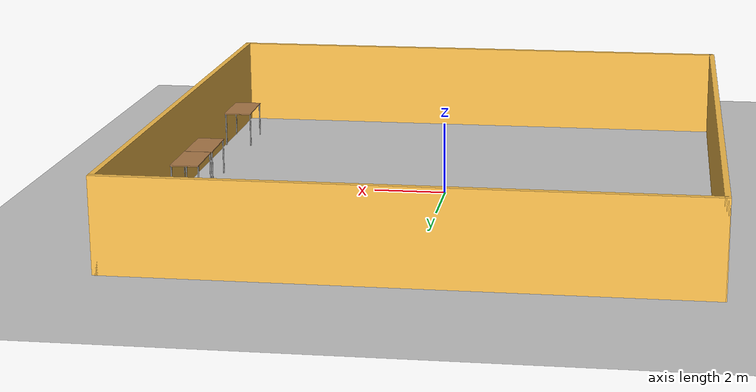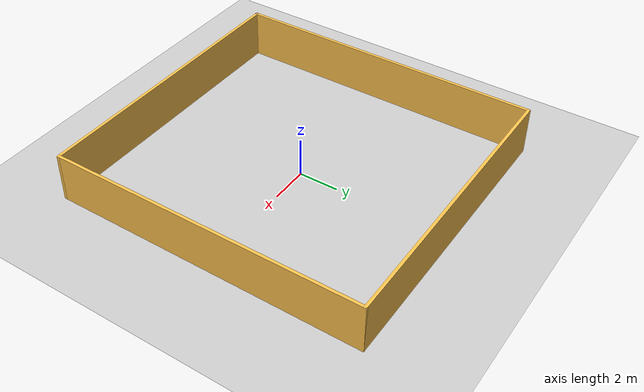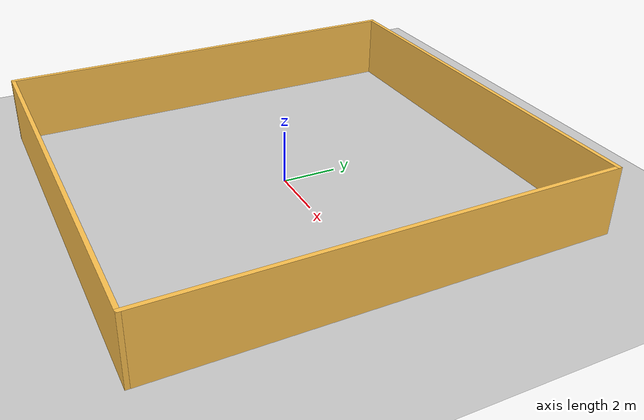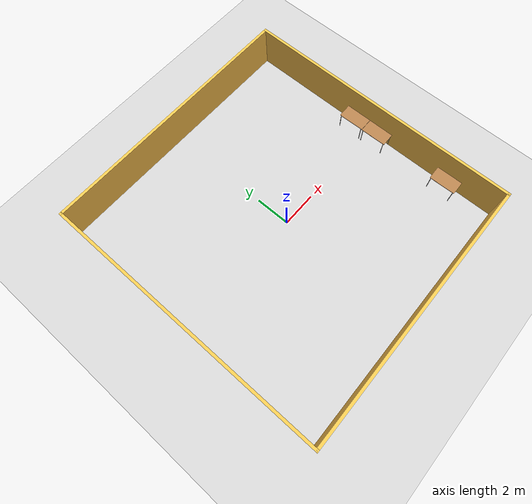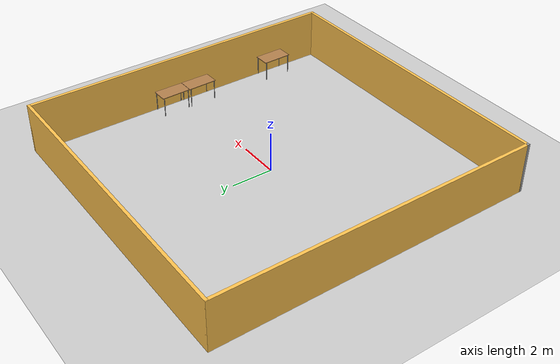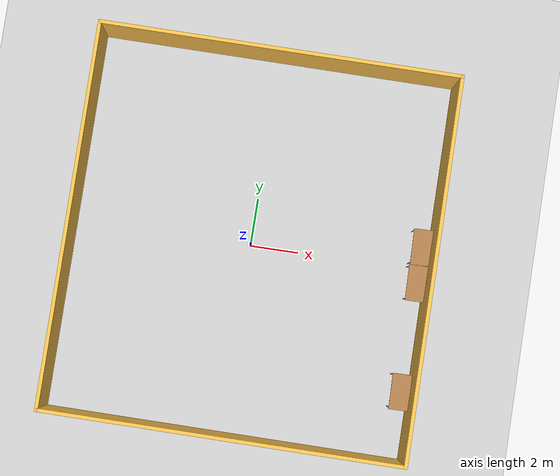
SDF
<sdf version="1.7">
 <world name="default">
  <model name="ground_plane">
   <static>1</static>
   <link name="link">
    <collision name="collision">
     <geometry><plane><normal>0 0 1</normal><size>100 100</size></plane></geometry>
     <surface>
      <contact><collide_bitmask>65535</collide_bitmask></contact>
      <friction><ode><mu>100</mu><mu2>50</mu2></ode></friction>
     </surface>
    </collision>
    <visual name="visual">
     <cast_shadows>0</cast_shadows>
     <geometry><plane><normal>0 0 1</normal><size>100 100</size></plane></geometry>
     <material>
      <script><uri>file://media/materials/scripts/gazebo.material</uri><name>Gazebo/Grey</name></script>
     </material>
    </visual>
   </link>
  </model>
  <model name="RRC">
   <link name="Wall_0">
    <collision name="Wall_0_Collision">
     <geometry><box><size>16.15 0.15 2.5</size></box></geometry>
     <pose>0 0 1.25 0 -0 0</pose>
    </collision>
    <visual name="Wall_0_Visual">
     <pose>0 0 1.25 0 -0 0</pose>
     <geometry><box><size>16.15 0.15 2.5</size></box></geometry>
     <material>
      <script><uri>file://media/materials/scripts/gazebo.material</uri><name>Gazebo/Grey</name></script>
      <ambient>1 0.764706 0.305882 1</ambient>
     </material>
     <meta><layer>0</layer></meta>
    </visual>
    <pose>-7.5 0 0 0 -0 1.5708</pose>
   </link>
   <link name="Wall_1">
    <collision name="Wall_1_Collision">
     <geometry><box><size>15.15 0.15 2.5</size></box></geometry>
     <pose>0 0 1.25 0 -0 0</pose>
    </collision>
    <visual name="Wall_1_Visual">
     <pose>0 0 1.25 0 -0 0</pose>
     <geometry><box><size>15.15 0.15 2.5</size></box></geometry>
     <material>
      <script><uri>file://media/materials/scripts/gazebo.material</uri><name>Gazebo/Grey</name></script>
      <ambient>1 0.764706 0.305882 1</ambient>
     </material>
     <meta><layer>0</layer></meta>
    </visual>
    <pose>0 8 0 0 -0 0</pose>
   </link>
   <link name="Wall_2">
    <collision name="Wall_2_Collision">
     <geometry><box><size>16.15 0.15 2.5</size></box></geometry>
     <pose>0 0 1.25 0 -0 0</pose>
    </collision>
    <visual name="Wall_2_Visual">
     <pose>0 0 1.25 0 -0 0</pose>
     <geometry><box><size>16.15 0.15 2.5</size></box></geometry>
     <material>
      <script><uri>file://media/materials/scripts/gazebo.material</uri><name>Gazebo/Grey</name></script>
      <ambient>1 0.764706 0.305882 1</ambient>
     </material>
     <meta><layer>0</layer></meta>
    </visual>
    <pose>7.5 0 0 0 -0 -1.5708</pose>
   </link>
   <link name="Wall_3">
    <collision name="Wall_3_Collision">
     <geometry><box><size>15.15 0.15 2.5</size></box></geometry>
     <pose>0 0 1.25 0 -0 0</pose>
    </collision>
    <visual name="Wall_3_Visual">
     <pose>0 0 1.25 0 -0 0</pose>
     <geometry><box><size>15.15 0.15 2.5</size></box></geometry>
     <material>
      <script><uri>file://media/materials/scripts/gazebo.material</uri><name>Gazebo/Grey</name></script>
      <ambient>1 0.764706 0.305882 1</ambient>
     </material>
     <meta><layer>0</layer></meta>
    </visual>
    <pose>0 -8 0 0 -0 3.14159</pose>
   </link>
   <link name="Wall_4">
    <collision name="Wall_4_Collision">
     <geometry><box><size>0.15 0.15 2.5</size></box></geometry>
     <pose>0 0 1.25 0 -0 0</pose>
    </collision>
    <visual name="Wall_4_Visual">
     <pose>0 0 1.25 0 -0 0</pose>
     <geometry><box><size>0.15 0.15 2.5</size></box></geometry>
     <material>
      <script><uri>file://media/materials/scripts/gazebo.material</uri><name>Gazebo/Grey</name></script>
      <ambient>1 1 1 1</ambient>
     </material>
     <meta><layer>0</layer></meta>
    </visual>
    <pose>-7.5 -8 0 0 -0 0</pose>
   </link>
   <static>1</static>
  </model>
  <model name="table_clone_0_clone_5">
   <static>1</static>
   <link name="link">
    <collision name="surface">
     <pose>0 0 1 0 -0 0</pose>
     <geometry><box><size>1.5 0.8 0.03</size></box></geometry>
     <surface><friction><ode><mu>0.6</mu><mu2>0.6</mu2></ode></friction></surface>
    </collision>
    <visual name="visual1">
     <pose>0 0 1 0 -0 0</pose>
     <geometry><box><size>1.5 0.8 0.03</size></box></geometry>
     <material>
      <script><uri>file://media/materials/scripts/gazebo.material</uri><name>Gazebo/Wood</name></script>
     </material>
    </visual>
    <collision name="front_left_leg">
     <pose>0.68 0.38 0.5 0 -0 0</pose>
     <geometry><cylinder><radius>0.02</radius><length>1</length></cylinder></geometry>
    </collision>
    <visual name="front_left_leg">
     <pose>0.68 0.38 0.5 0 -0 0</pose>
     <geometry><cylinder><radius>0.02</radius><length>1</length></cylinder></geometry>
     <material>
      <script><uri>file://media/materials/scripts/gazebo.material</uri><name>Gazebo/Grey</name></script>
     </material>
    </visual>
    <collision name="front_right_leg">
     <pose>0.68 -0.38 0.5 0 -0 0</pose>
     <geometry><cylinder><radius>0.02</radius><length>1</length></cylinder></geometry>
    </collision>
    <visual name="front_right_leg">
     <pose>0.68 -0.38 0.5 0 -0 0</pose>
     <geometry><cylinder><radius>0.02</radius><length>1</length></cylinder></geometry>
     <material>
      <script><uri>file://media/materials/scripts/gazebo.material</uri><name>Gazebo/Grey</name></script>
     </material>
    </visual>
    <collision name="back_right_leg">
     <pose>-0.68 -0.38 0.5 0 -0 0</pose>
     <geometry><cylinder><radius>0.02</radius><length>1</length></cylinder></geometry>
    </collision>
    <visual name="back_right_leg">
     <pose>-0.68 -0.38 0.5 0 -0 0</pose>
     <geometry><cylinder><radius>0.02</radius><length>1</length></cylinder></geometry>
     <material>
      <script><uri>file://media/materials/scripts/gazebo.material</uri><name>Gazebo/Grey</name></script>
     </material>
    </visual>
    <collision name="back_left_leg">
     <pose>-0.68 0.38 0.5 0 -0 0</pose>
     <geometry><cylinder><radius>0.02</radius><length>1</length></cylinder></geometry>
    </collision>
    <visual name="back_left_leg">
     <pose>-0.68 0.38 0.5 0 -0 0</pose>
     <geometry><cylinder><radius>0.02</radius><length>1</length></cylinder></geometry>
     <material>
      <script><uri>file://media/materials/scripts/gazebo.material</uri><name>Gazebo/Grey</name></script>
     </material>
    </visual>
   </link>
   <pose>7.03829 0.952201 0 0 -0 1.58908</pose>
  </model>
  <model name="table_clone_0_clone_6">
   <static>1</static>
   <link name="link">
    <collision name="surface">
     <pose>0 0 1 0 -0 0</pose>
     <geometry><box><size>1.5 0.8 0.03</size></box></geometry>
     <surface><friction><ode><mu>0.6</mu><mu2>0.6</mu2></ode></friction></surface>
    </collision>
    <visual name="visual1">
     <pose>0 0 1 0 -0 0</pose>
     <geometry><box><size>1.5 0.8 0.03</size></box></geometry>
     <material>
      <script><uri>file://media/materials/scripts/gazebo.material</uri><name>Gazebo/Wood</name></script>
     </material>
    </visual>
    <collision name="front_left_leg">
     <pose>0.68 0.38 0.5 0 -0 0</pose>
     <geometry><cylinder><radius>0.02</radius><length>1</length></cylinder></geometry>
    </collision>
    <visual name="front_left_leg">
     <pose>0.68 0.38 0.5 0 -0 0</pose>
     <geometry><cylinder><radius>0.02</radius><length>1</length></cylinder></geometry>
     <material>
      <script><uri>file://media/materials/scripts/gazebo.material</uri><name>Gazebo/Grey</name></script>
     </material>
    </visual>
    <collision name="front_right_leg">
     <pose>0.68 -0.38 0.5 0 -0 0</pose>
     <geometry><cylinder><radius>0.02</radius><length>1</length></cylinder></geometry>
    </collision>
    <visual name="front_right_leg">
     <pose>0.68 -0.38 0.5 0 -0 0</pose>
     <geometry><cylinder><radius>0.02</radius><length>1</length></cylinder></geometry>
     <material>
      <script><uri>file://media/materials/scripts/gazebo.material</uri><name>Gazebo/Grey</name></script>
     </material>
    </visual>
    <collision name="back_right_leg">
     <pose>-0.68 -0.38 0.5 0 -0 0</pose>
     <geometry><cylinder><radius>0.02</radius><length>1</length></cylinder></geometry>
    </collision>
    <visual name="back_right_leg">
     <pose>-0.68 -0.38 0.5 0 -0 0</pose>
     <geometry><cylinder><radius>0.02</radius><length>1</length></cylinder></geometry>
     <material>
      <script><uri>file://media/materials/scripts/gazebo.material</uri><name>Gazebo/Grey</name></script>
     </material>
    </visual>
    <collision name="back_left_leg">
     <pose>-0.68 0.38 0.5 0 -0 0</pose>
     <geometry><cylinder><radius>0.02</radius><length>1</length></cylinder></geometry>
    </collision>
    <visual name="back_left_leg">
     <pose>-0.68 0.38 0.5 0 -0 0</pose>
     <geometry><cylinder><radius>0.02</radius><length>1</length></cylinder></geometry>
     <material>
      <script><uri>file://media/materials/scripts/gazebo.material</uri><name>Gazebo/Grey</name></script>
     </material>
    </visual>
   </link>
   <pose>7.04645 -0.560802 0 0 -0 1.58908</pose>
  </model>
  <model name="table_clone_0_clone_9">
   <static>1</static>
   <link name="link">
    <collision name="surface">
     <pose>0 0 1 0 -0 0</pose>
     <geometry><box><size>1.5 0.8 0.03</size></box></geometry>
     <surface><friction><ode><mu>0.6</mu><mu2>0.6</mu2></ode></friction></surface>
    </collision>
    <visual name="visual1">
     <pose>0 0 1 0 -0 0</pose>
     <geometry><box><size>1.5 0.8 0.03</size></box></geometry>
     <material>
      <script><uri>file://media/materials/scripts/gazebo.material</uri><name>Gazebo/Wood</name></script>
     </material>
    </visual>
    <collision name="front_left_leg">
     <pose>0.68 0.38 0.5 0 -0 0</pose>
     <geometry><cylinder><radius>0.02</radius><length>1</length></cylinder></geometry>
    </collision>
    <visual name="front_left_leg">
     <pose>0.68 0.38 0.5 0 -0 0</pose>
     <geometry><cylinder><radius>0.02</radius><length>1</length></cylinder></geometry>
     <material>
      <script><uri>file://media/materials/scripts/gazebo.material</uri><name>Gazebo/Grey</name></script>
     </material>
    </visual>
    <collision name="front_right_leg">
     <pose>0.68 -0.38 0.5 0 -0 0</pose>
     <geometry><cylinder><radius>0.02</radius><length>1</length></cylinder></geometry>
    </collision>
    <visual name="front_right_leg">
     <pose>0.68 -0.38 0.5 0 -0 0</pose>
     <geometry><cylinder><radius>0.02</radius><length>1</length></cylinder></geometry>
     <material>
      <script><uri>file://media/materials/scripts/gazebo.material</uri><name>Gazebo/Grey</name></script>
     </material>
    </visual>
    <collision name="back_right_leg">
     <pose>-0.68 -0.38 0.5 0 -0 0</pose>
     <geometry><cylinder><radius>0.02</radius><length>1</length></cylinder></geometry>
    </collision>
    <visual name="back_right_leg">
     <pose>-0.68 -0.38 0.5 0 -0 0</pose>
     <geometry><cylinder><radius>0.02</radius><length>1</length></cylinder></geometry>
     <material>
      <script><uri>file://media/materials/scripts/gazebo.material</uri><name>Gazebo/Grey</name></script>
     </material>
    </visual>
    <collision name="back_left_leg">
     <pose>-0.68 0.38 0.5 0 -0 0</pose>
     <geometry><cylinder><radius>0.02</radius><length>1</length></cylinder></geometry>
    </collision>
    <visual name="back_left_leg">
     <pose>-0.68 0.38 0.5 0 -0 0</pose>
     <geometry><cylinder><radius>0.02</radius><length>1</length></cylinder></geometry>
     <material>
      <script><uri>file://media/materials/scripts/gazebo.material</uri><name>Gazebo/Grey</name></script>
     </material>
    </visual>
   </link>
   <pose>7.02703 -5.11024 0 0 -0 1.58908</pose>
  </model>
  <model name="Construction Cone_clone">
   <pose>5.7992 -4.49507 -1e-05 -1e-06 0 0</pose>
   <scale>1 1 1</scale>
   <link name="link">
    <pose>5.7992 -4.49507 -1e-05 -1e-06 0 0</pose>
    <velocity>0 0 0 0 -0 0</velocity>
    <acceleration>0 0 -9.8 0 -0 0</acceleration>
    <wrench>0 0 -9.8 0 -0 0</wrench>
   </link>
  </model>
  <model name="Construction Cone_clone_1">
   <pose>1.23861 -4.36281 -1e-05 0 -0 0</pose>
   <scale>1 1 1</scale>
   <link name="link">
    <pose>1.23861 -4.36281 -1e-05 0 -0 0</pose>
    <velocity>0 0 0 0 -0 0</velocity>
    <acceleration>0 0 -9.8 0 -0 0</acceleration>
    <wrench>0 0 -9.8 0 -0 0</wrench>
   </link>
  </model>
  <model name="MetalCabinet_clone_0">
   <pose>2.55708 -7.40689 0 0 -0 1.57149</pose>
   <scale>1 1 1</scale>
   <link name="body">
    <pose>2.55708 -7.40689 0 0 -0 1.57149</pose>
    <velocity>0 0 0 0 -0 0</velocity>
    <acceleration>0 0 0 0 -0 0</acceleration>
    <wrench>0 0 0 0 -0 0</wrench>
   </link>
  </model>
  <model name="MetalCabinet_clone_1">
   <pose>2.55269 -6.6114 0 0 -0 1.57149</pose>
   <scale>1 1 1</scale>
   <link name="body">
    <pose>2.55269 -6.6114 0 0 -0 1.57149</pose>
    <velocity>0 0 0 0 -0 0</velocity>
    <acceleration>0 0 0 0 -0 0</acceleration>
    <wrench>0 0 0 0 -0 0</wrench>
   </link>
  </model>
  <model name="MetalCabinet_clone_2">
   <pose>2.56191 -5.80129 0 0 -0 1.57149</pose>
   <scale>1 1 1</scale>
   <link name="body">
    <pose>2.56191 -5.80129 0 0 -0 1.57149</pose>
    <velocity>0 0 0 0 -0 0</velocity>
    <acceleration>0 0 0 0 -0 0</acceleration>
    <wrench>0 0 0 0 -0 0</wrench>
   </link>
  </model>
  <model name="MetalCabinet_clone_3">
   <pose>2.52904 -4.93026 0 0 -0 1.57149</pose>
   <scale>1 1 1</scale>
   <link name="body">
    <pose>2.52904 -4.93026 0 0 -0 1.57149</pose>
    <velocity>0 0 0 0 -0 0</velocity>
    <acceleration>0 0 0 0 -0 0</acceleration>
    <wrench>0 0 0 0 -0 0</wrench>
   </link>
  </model>
  <model name="MetalCabinet_clone_clone">
   <pose>-7.01967 -4.30325 0 0 0 -1.55346</pose>
   <scale>1 1 1</scale>
   <link name="body">
    <pose>-7.01967 -4.30325 0 0 0 -1.55346</pose>
    <velocity>0 0 0 0 -0 0</velocity>
    <acceleration>0 0 0 0 -0 0</acceleration>
    <wrench>0 0 0 0 -0 0</wrench>
   </link>
  </model>
  <model name="MetalCabinet_clone_clone_0">
   <pose>-7.11034 -7.35093 0 0 0 -1.55346</pose>
   <scale>1 1 1</scale>
   <link name="body">
    <pose>-7.11034 -7.35093 0 0 0 -1.55346</pose>
    <velocity>0 0 0 0 -0 0</velocity>
    <acceleration>0 0 0 0 -0 0</acceleration>
    <wrench>0 0 0 0 -0 0</wrench>
   </link>
  </model>
  <model name="MetalCabinet_clone_clone_1">
   <pose>-7.05939 -6.41552 0 0 0 -1.55346</pose>
   <scale>1 1 1</scale>
   <link name="body">
    <pose>-7.05939 -6.41552 0 0 0 -1.55346</pose>
    <velocity>0 0 0 0 -0 0</velocity>
    <acceleration>0 0 0 0 -0 0</acceleration>
    <wrench>0 0 0 0 -0 0</wrench>
   </link>
  </model>
  <model name="MetalCabinet_clone_clone_10">
   <pose>2.06666 -7.39083 0 0 0 -1.55346</pose>
   <scale>1 1 1</scale>
   <link name="body">
    <pose>2.06666 -7.39083 0 0 0 -1.55346</pose>
    <velocity>0 0 0 0 -0 0</velocity>
    <acceleration>0 0 0 0 -0 0</acceleration>
    <wrench>0 0 0 0 -0 0</wrench>
   </link>
  </model>
  <model name="MetalCabinet_clone_clone_2">
   <pose>-7.00181 -5.3595 0 0 0 -1.55346</pose>
   <scale>1 1 1</scale>
   <link name="body">
    <pose>-7.00181 -5.3595 0 0 0 -1.55346</pose>
    <velocity>0 0 0 0 -0 0</velocity>
    <acceleration>0 0 0 0 -0 0</acceleration>
    <wrench>0 0 0 0 -0 0</wrench>
   </link>
  </model>
  <model name="MetalCabinet_clone_clone_6">
   <pose>-6.34319 -6.63218 0 0 0 -1.55346</pose>
   <scale>1 1 1</scale>
   <link name="body">
    <pose>-6.34319 -6.63218 0 0 0 -1.55346</pose>
    <velocity>0 0 0 0 -0 0</velocity>
    <acceleration>0 0 0 0 -0 0</acceleration>
    <wrench>0 0 0 0 -0 0</wrench>
   </link>
  </model>
  <model name="MetalCabinet_clone_clone_7">
   <pose>2.0733 -4.92417 0 0 0 -1.55346</pose>
   <scale>1 1 1</scale>
   <link name="body">
    <pose>2.0733 -4.92417 0 0 0 -1.55346</pose>
    <velocity>0 0 0 0 -0 0</velocity>
    <acceleration>0 0 0 0 -0 0</acceleration>
    <wrench>0 0 0 0 -0 0</wrench>
   </link>
  </model>
  <model name="MetalCabinet_clone_clone_8">
   <pose>2.083 -5.7488 0 0 0 -1.55346</pose>
   <scale>1 1 1</scale>
   <link name="body">
    <pose>2.083 -5.7488 0 0 0 -1.55346</pose>
    <velocity>0 0 0 0 -0 0</velocity>
    <acceleration>0 0 0 0 -0 0</acceleration>
    <wrench>0 0 0 0 -0 0</wrench>
   </link>
  </model>
  <model name="MetalCabinet_clone_clone_9">
   <pose>2.09349 -6.58171 0 0 0 -1.55346</pose>
   <scale>1 1 1</scale>
   <link name="body">
    <pose>2.09349 -6.58171 0 0 0 -1.55346</pose>
    <velocity>0 0 0 0 -0 0</velocity>
    <acceleration>0 0 0 0 -0 0</acceleration>
    <wrench>0 0 0 0 -0 0</wrench>
   </link>
  </model>
  <model name="OfficeChairBlack_clone">
   <pose>-1.49275 -4.55886 0 0 -0 0</pose>
   <scale>1 1 1</scale>
   <link name="body">
    <pose>-1.49275 -4.55886 0 0 -0 0</pose>
    <velocity>0 0 0 0 -0 0</velocity>
    <acceleration>0 0 0 0 -0 0</acceleration>
    <wrench>0 0 0 0 -0 0</wrench>
   </link>
  </model>
  <model name="OfficeChairBlack_clone_0">
   <pose>-1.49017 -6.02346 0 0 -0 0</pose>
   <scale>1 1 1</scale>
   <link name="body">
    <pose>-1.49017 -6.02346 0 0 -0 0</pose>
    <velocity>0 0 0 0 -0 0</velocity>
    <acceleration>0 0 0 0 -0 0</acceleration>
    <wrench>0 0 0 0 -0 0</wrench>
   </link>
  </model>
  <model name="OfficeChairBlue_clone_0">
   <pose>-4.15467 -4.70728 0 0 -0 0</pose>
   <scale>1 1 1</scale>
   <link name="body">
    <pose>-4.15467 -4.70728 0 0 -0 0</pose>
    <velocity>0 0 0 0 -0 0</velocity>
    <acceleration>0 0 0 0 -0 0</acceleration>
    <wrench>0 0 0 0 -0 0</wrench>
   </link>
  </model>
  <model name="OfficeChairBlue_clone_1">
   <pose>-3.92885 -6.34664 0 0 -0 0</pose>
   <scale>1 1 1</scale>
   <link name="body">
    <pose>-3.92885 -6.34664 0 0 -0 0</pose>
    <velocity>0 0 0 0 -0 0</velocity>
    <acceleration>0 0 0 0 -0 0</acceleration>
    <wrench>0 0 0 0 -0 0</wrench>
   </link>
  </model>
  <model name="OfficeChairGrey_clone_0_clone_0">
   <pose>-1.2616 1.20346 0 0 -0 0</pose>
   <scale>1 1 1</scale>
   <link name="body">
    <pose>-1.2616 1.20346 0 0 -0 0</pose>
    <velocity>0 0 0 0 -0 0</velocity>
    <acceleration>0 0 0 0 -0 0</acceleration>
    <wrench>0 0 0 0 -0 0</wrench>
   </link>
  </model>
  <model name="OfficeChairGrey_clone_0_clone_0_clone">
   <pose>-0.058065 -0.670497 0 0 -0 3.1354</pose>
   <scale>1 1 1</scale>
   <link name="body">
    <pose>-0.058065 -0.670497 0 0 -0 3.1354</pose>
    <velocity>0 0 0 0 -0 0</velocity>
    <acceleration>0 0 0 0 -0 0</acceleration>
    <wrench>0 0 0 0 -0 0</wrench>
   </link>
  </model>
  <model name="OfficeChairGrey_clone_0_clone_1">
   <pose>6.26333 1.38353 0 0 -0 0</pose>
   <scale>1 1 1</scale>
   <link name="body">
    <pose>6.26333 1.38353 0 0 -0 0</pose>
    <velocity>0 0 0 0 -0 0</velocity>
    <acceleration>0 0 0 0 -0 0</acceleration>
    <wrench>0 0 0 0 -0 0</wrench>
   </link>
  </model>
  <model name="OfficeChairGrey_clone_clone_0">
   <pose>6.14076 0.445875 0 0 -0 0</pose>
   <scale>1 1 1</scale>
   <link name="body">
    <pose>6.14076 0.445875 0 0 -0 0</pose>
    <velocity>0 0 0 0 -0 0</velocity>
    <acceleration>0 0 0 0 -0 0</acceleration>
    <wrench>0 0 0 0 -0 0</wrench>
   </link>
  </model>
  <model name="OfficeChairGrey_clone_clone_0_clone">
   <pose>2.405 0.950697 0 0 0 -1.57391</pose>
   <scale>1 1 1</scale>
   <link name="body">
    <pose>2.405 0.950697 0 0 0 -1.57391</pose>
    <velocity>0 0 0 0 -0 0</velocity>
    <acceleration>0 0 0 0 -0 0</acceleration>
    <wrench>0 0 0 0 -0 0</wrench>
   </link>
  </model>
  <model name="OfficeChairGrey_clone_clone_0_clone_0">
   <pose>2.43591 -0.548521 0 0 0 -1.56247</pose>
   <scale>1 1 1</scale>
   <link name="body">
    <pose>2.43591 -0.548521 0 0 0 -1.56247</pose>
    <velocity>0 0 0 0 -0 0</velocity>
    <acceleration>0 0 0 0 -0 0</acceleration>
    <wrench>0 0 0 0 -0 0</wrench>
   </link>
  </model>
  <model name="WhiteCabinet_clone_0_clone_4">
   <pose>-4.22011 0.788936 0 0 -0 1.55539</pose>
   <scale>1 1 1</scale>
   <link name="body">
    <pose>-4.22011 0.788936 0 0 -0 1.55539</pose>
    <velocity>0 0 0 0 -0 0</velocity>
    <acceleration>0 0 0 0 -0 0</acceleration>
    <wrench>0 0 0 0 -0 0</wrench>
   </link>
  </model>
  <model name="WhiteCabinet_clone_0_clone_6">
   <pose>-2.8567 1.46182 0 0 -0 1.55539</pose>
   <scale>1 1 1</scale>
   <link name="body">
    <pose>-2.8567 1.46182 0 0 -0 1.55539</pose>
    <velocity>0 0 0 0 -0 0</velocity>
    <acceleration>0 0 0 0 -0 0</acceleration>
    <wrench>0 0 0 0 -0 0</wrench>
   </link>
  </model>
  <model name="WhiteCabinet_clone_0_clone_6_clone">
   <pose>-2.82657 0.541053 0 0 0 -1.52616</pose>
   <scale>1 1 1</scale>
   <link name="body">
    <pose>-2.82657 0.541053 0 0 0 -1.52616</pose>
    <velocity>0 0 0 0 -0 0</velocity>
    <acceleration>0 0 0 0 -0 0</acceleration>
    <wrench>0 0 0 0 -0 0</wrench>
   </link>
  </model>
  <model name="WhiteCabinet_clone_0_clone_6_clone_0_clone_clone_1_clone">
   <pose>-4.85951 -0.016652 0 0 0 -1.55703</pose>
   <scale>1 1 1</scale>
   <link name="body">
    <pose>-4.85951 -0.016652 0 0 0 -1.55703</pose>
    <velocity>0 0 0 0 -0 0</velocity>
    <acceleration>0 0 0 0 -0 0</acceleration>
    <wrench>0 0 0 0 -0 0</wrench>
   </link>
  </model>
  <model name="WhiteCabinet_clone_0_clone_6_clone_0_clone_clone_1_clone_0">
   <pose>-4.86407 0.924354 0 0 0 -1.55703</pose>
   <scale>1 1 1</scale>
   <link name="body">
    <pose>-4.86407 0.924354 0 0 0 -1.55703</pose>
    <velocity>0 0 0 0 -0 0</velocity>
    <acceleration>0 0 0 0 -0 0</acceleration>
    <wrench>0 0 0 0 -0 0</wrench>
   </link>
  </model>
  <model name="WhiteCabinet_clone_0_clone_6_clone_0_clone_clone_1_clone_2">
   <pose>-2.82239 -0.446166 0 0 0 -1.55703</pose>
   <scale>1 1 1</scale>
   <link name="body">
    <pose>-2.82239 -0.446166 0 0 0 -1.55703</pose>
    <velocity>0 0 0 0 -0 0</velocity>
    <acceleration>0 0 0 0 -0 0</acceleration>
    <wrench>0 0 0 0 -0 0</wrench>
   </link>
  </model>
  <model name="WhiteCabinet_clone_0_clone_6_clone_0_clone_clone_1_clone_2_clone">
   <pose>-4.83368 -0.983611 0 0 0 -1.55703</pose>
   <scale>1 1 1</scale>
   <link name="body">
    <pose>-4.83368 -0.983611 0 0 0 -1.55703</pose>
    <velocity>0 0 0 0 -0 0</velocity>
    <acceleration>0 0 0 0 -0 0</acceleration>
    <wrench>0 0 0 0 -0 0</wrench>
   </link>
  </model>
  <model name="WhiteCabinet_clone_0_clone_6_clone_0_clone_clone_1_clone_2_clone_0">
   <pose>-4.20443 -0.125615 0 0 0 -1.55703</pose>
   <scale>1 1 1</scale>
   <link name="body">
    <pose>-4.20443 -0.125615 0 0 0 -1.55703</pose>
    <velocity>0 0 0 0 -0 0</velocity>
    <acceleration>0 0 0 0 -0 0</acceleration>
    <wrench>0 0 0 0 -0 0</wrench>
   </link>
  </model>
  <model name="WhiteCabinet_clone_0_clone_6_clone_0_clone_clone_1_clone_2_clone_1">
   <pose>-4.19078 -1.03023 0 0 0 -1.55703</pose>
   <scale>1 1 1</scale>
   <link name="body">
    <pose>-4.19078 -1.03023 0 0 0 -1.55703</pose>
    <velocity>0 0 0 0 -0 0</velocity>
    <acceleration>0 0 0 0 -0 0</acceleration>
    <wrench>0 0 0 0 -0 0</wrench>
   </link>
  </model>
  <model name="cardboard_box_0">
   <pose>3.96847 0.977565 -1.0418e+07 0 -0 0</pose>
   <scale>1 1 1</scale>
   <link name="link">
    <pose>7.93694 1.95513 -1.0418e+07 0 -0 0</pose>
    <velocity>0 0 -14289.6 0 -0 0</velocity>
    <acceleration>0 0 -9.8 0 -0 0</acceleration>
    <wrench>0 0 -9.8 0 -0 0</wrench>
   </link>
  </model>
  <model name="cardboard_box_1">
   <pose>0.006438 -3.96264 -1.0418e+07 0 -0 0</pose>
   <scale>1 1 1</scale>
   <link name="link">
    <pose>0.012876 -7.92528 -1.0418e+07 0 -0 0</pose>
    <velocity>0 0 -14289.6 0 -0 0</velocity>
    <acceleration>0 0 -9.8 0 -0 0</acceleration>
    <wrench>0 0 -9.8 0 -0 0</wrench>
   </link>
  </model>
  <model name="person_standing_clone_0_clone">
   <pose>6.12731 -0.461294 -1e-06 -1e-06 1e-06 1.64021</pose>
   <scale>1 1 1</scale>
   <link name="link">
    <pose>6.12731 -0.461294 -1e-06 -1e-06 1e-06 1.64021</pose>
    <velocity>0 0 0 0 -0 0</velocity>
    <acceleration>-1.25678 1.54637 -1.41033 -1.56221 -1.37587 -0.045292</acceleration>
    <wrench>-100.542 123.709 -112.826 0 -0 0</wrench>
   </link>
  </model>
  <model name="table_clone_0_clone_clone_1">
   <pose>-5.62606 -6.7098 0 0 -0 1.58908</pose>
   <scale>1 1 1</scale>
   <link name="link">
    <pose>-5.62606 -6.7098 0 0 -0 1.58908</pose>
    <velocity>0 0 0 0 -0 0</velocity>
    <acceleration>0 0 0 0 -0 0</acceleration>
    <wrench>0 0 0 0 -0 0</wrench>
   </link>
  </model>
  <model name="table_clone_0_clone_clone_2">
   <pose>-5.68516 -5.20679 0 0 -0 1.58908</pose>
   <scale>1 1 1</scale>
   <link name="link">
    <pose>-5.68516 -5.20679 0 0 -0 1.58908</pose>
    <velocity>0 0 0 0 -0 0</velocity>
    <acceleration>0 0 0 0 -0 0</acceleration>
    <wrench>0 0 0 0 -0 0</wrench>
   </link>
  </model>
  <model name="table_clone_0_clone_clone_2_clone">
   <pose>-4.83975 -4.71811 0 0 -0 1.58908</pose>
   <scale>1 1 1</scale>
   <link name="link">
    <pose>-4.83975 -4.71811 0 0 -0 1.58908</pose>
    <velocity>0 0 0 0 -0 0</velocity>
    <acceleration>0 0 0 0 -0 0</acceleration>
    <wrench>0 0 0 0 -0 0</wrench>
   </link>
  </model>
  <model name="table_clone_0_clone_clone_2_clone_0">
   <pose>-4.79726 -6.46943 0 0 -0 1.58908</pose>
   <scale>1 1 1</scale>
   <link name="link">
    <pose>-4.79726 -6.46943 0 0 -0 1.58908</pose>
    <velocity>0 0 0 0 -0 0</velocity>
    <acceleration>0 0 0 0 -0 0</acceleration>
    <wrench>0 0 0 0 -0 0</wrench>
   </link>
  </model>
  <model name="table_clone_1">
   <pose>4.42862 -4.64955 0 0 -0 0</pose>
   <scale>1 1 1</scale>
   <link name="link">
    <pose>4.42862 -4.64955 0 0 -0 0</pose>
    <velocity>0 0 0 0 -0 0</velocity>
    <acceleration>0 0 0 0 -0 0</acceleration>
    <wrench>0 0 0 0 -0 0</wrench>
   </link>
  </model>
  <model name="table_clone_2_clone_clone_clone">
   <pose>0.664986 0.980658 0 0 0 -1.55798</pose>
   <scale>1 1 1</scale>
   <link name="link">
    <pose>0.664986 0.980658 0 0 0 -1.55798</pose>
    <velocity>0 0 0 0 -0 0</velocity>
    <acceleration>0 0 0 0 -0 0</acceleration>
    <wrench>0 0 0 0 -0 0</wrench>
   </link>
  </model>
  <model name="table_clone_2_clone_clone_clone_0">
   <pose>0.684996 -0.53817 0 0 0 -1.55798</pose>
   <scale>1 1 1</scale>
   <link name="link">
    <pose>0.684996 -0.53817 0 0 0 -1.55798</pose>
    <velocity>0 0 0 0 -0 0</velocity>
    <acceleration>0 0 0 0 -0 0</acceleration>
    <wrench>0 0 0 0 -0 0</wrench>
   </link>
  </model>
  <model name="table_clone_2_clone_clone_clone_clone">
   <pose>1.53882 1.03634 0 0 0 -1.55798</pose>
   <scale>1 1 1</scale>
   <link name="link">
    <pose>1.53882 1.03634 0 0 0 -1.55798</pose>
    <velocity>0 0 0 0 -0 0</velocity>
    <acceleration>0 0 0 0 -0 0</acceleration>
    <wrench>0 0 0 0 -0 0</wrench>
   </link>
  </model>
  <model name="table_clone_2_clone_clone_clone_clone_clone">
   <pose>1.544 -0.499855 0 0 0 -1.55798</pose>
   <scale>1 1 1</scale>
   <link name="link">
    <pose>1.544 -0.499855 0 0 0 -1.55798</pose>
    <velocity>0 0 0 0 -0 0</velocity>
    <acceleration>0 0 0 0 -0 0</acceleration>
    <wrench>0 0 0 0 -0 0</wrench>
   </link>
  </model>
  <model name="table_clone_clone_0">
   <pose>0.074544 -6.44489 0 0 0 -1.57013</pose>
   <scale>1 1 1</scale>
   <link name="link">
    <pose>0.074544 -6.44489 0 0 0 -1.57013</pose>
    <velocity>0 0 0 0 -0 0</velocity>
    <acceleration>0 0 0 0 -0 0</acceleration>
    <wrench>0 0 0 0 -0 0</wrench>
   </link>
  </model>
  <model name="table_clone_clone_clone">
   <pose>-3.07867 -4.76943 0 0 0 -1.59028</pose>
   <scale>1 1 1</scale>
   <link name="link">
    <pose>-3.07867 -4.76943 0 0 0 -1.59028</pose>
    <velocity>0 0 0 0 -0 0</velocity>
    <acceleration>0 0 0 0 -0 0</acceleration>
    <wrench>0 0 0 0 -0 0</wrench>
   </link>
  </model>
  <model name="table_clone_clone_clone_0">
   <pose>-2.25255 -4.77765 0 0 0 -1.59028</pose>
   <scale>1 1 1</scale>
   <link name="link">
    <pose>-2.25255 -4.77765 0 0 0 -1.59028</pose>
    <velocity>0 0 0 0 -0 0</velocity>
    <acceleration>0 0 0 0 -0 0</acceleration>
    <wrench>0 0 0 0 -0 0</wrench>
   </link>
  </model>
  <model name="table_clone_clone_clone_0_clone">
   <pose>0.097904 -4.78362 0 0 0 -1.59028</pose>
   <scale>1 1 1</scale>
   <link name="link">
    <pose>0.097904 -4.78362 0 0 0 -1.59028</pose>
    <velocity>0 0 0 0 -0 0</velocity>
    <acceleration>0 0 0 0 -0 0</acceleration>
    <wrench>0 0 0 0 -0 0</wrench>
   </link>
  </model>
  <model name="table_clone_clone_clone_0_clone_0">
   <pose>-2.28813 -6.33451 0 0 0 -1.59028</pose>
   <scale>1 1 1</scale>
   <link name="link">
    <pose>-2.28813 -6.33451 0 0 0 -1.59028</pose>
    <velocity>0 0 0 0 -0 0</velocity>
    <acceleration>0 0 0 0 -0 0</acceleration>
    <wrench>0 0 0 0 -0 0</wrench>
   </link>
  </model>
 </world>
</sdf>
